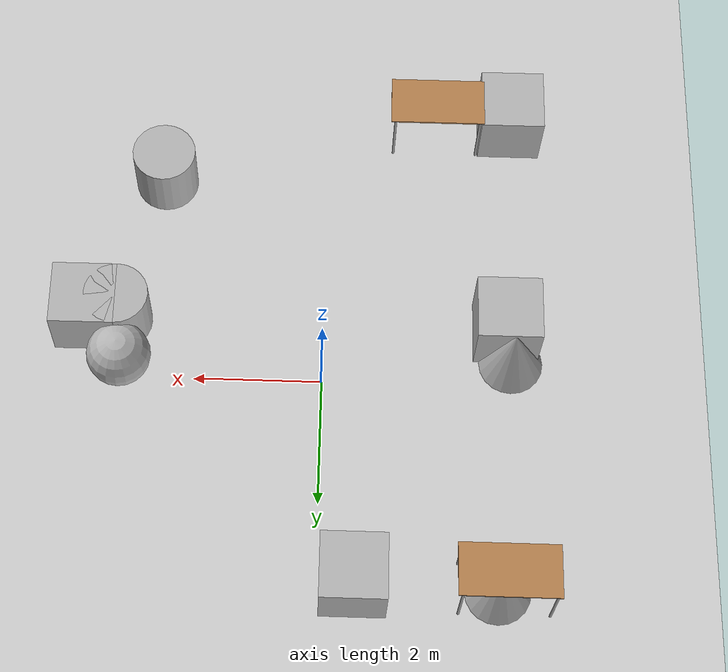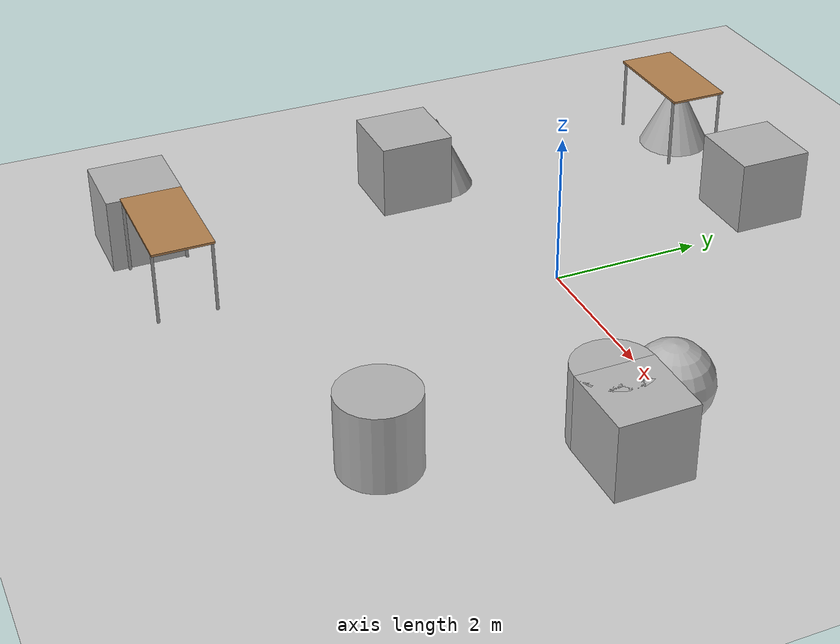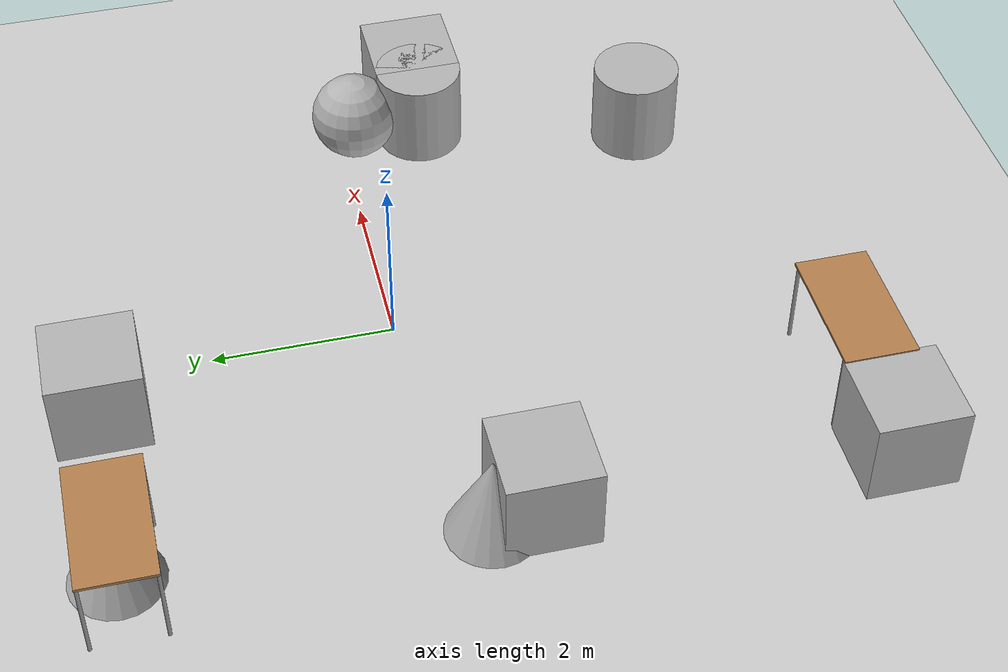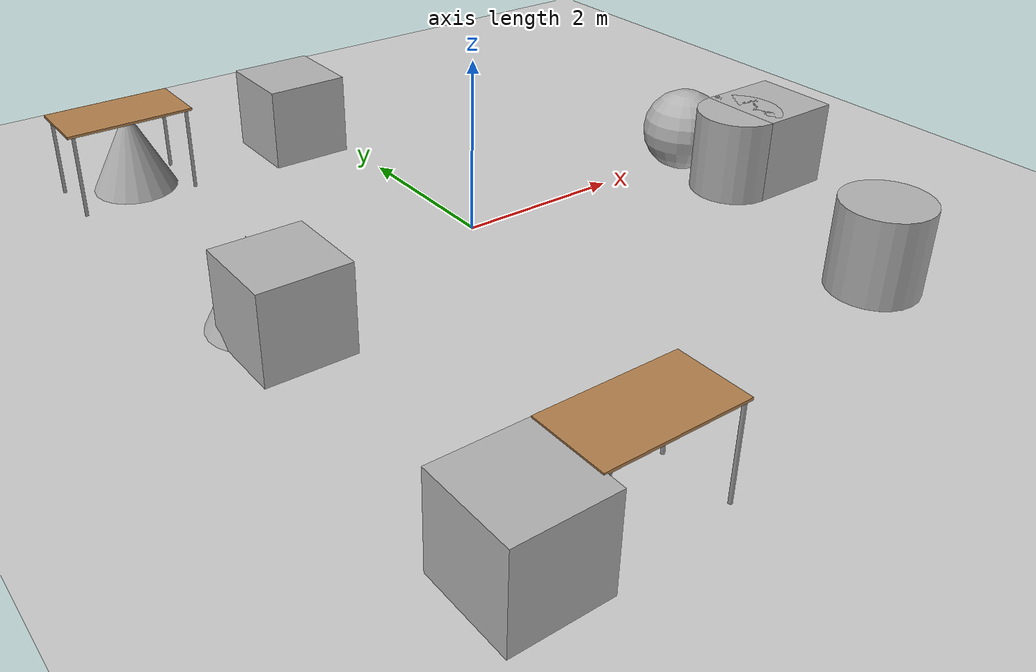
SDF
<sdf version="1.10">
 <world name="rex">
  <physics name="1ms" type="ignored">
   <max_step_size>0.004</max_step_size>
   <real_time_factor>1.0</real_time_factor>
  </physics>
  <plugin filename="gz-sim-physics-system" name="gz::sim::systems::Physics"/>
  <plugin filename="gz-sim-sensors-system" name="gz::sim::systems::Sensors">
   <render_engine>ogre2</render_engine>
  </plugin>
  <plugin filename="gz-sim-imu-system" name="gz::sim::systems::Imu"/>
  <plugin filename="gz-sim-scene-broadcaster-system" name="gz::sim::systems::SceneBroadcaster"/>
  <plugin filename="gz-sim-user-commands-system" name="gz::sim::systems::UserCommands"/>
  <model name="ground_plane">
   <static>true</static>
   <link name="link">
    <collision name="collision">
     <geometry><plane><normal>0 0 1</normal><size>100 100</size></plane></geometry>
     <surface>
      <friction>
       <ode><mu>50</mu></ode>
       <bullet>
        <friction>1</friction>
        <friction2>1</friction2>
        <rolling_friction>0.10000000000000001</rolling_friction>
       </bullet>
      </friction>
     </surface>
    </collision>
    <visual name="visual">
     <geometry><plane><normal>0 0 1</normal><size>100 100</size></plane></geometry>
     <material>
      <ambient>0.800000012 0.800000012 0.800000012 1</ambient>
      <diffuse>0.800000012 0.800000012 0.800000012 1</diffuse>
      <specular>0.800000012 0.800000012 0.800000012 1</specular>
     </material>
    </visual>
    <inertial>
     <mass>1</mass>
     <inertia><ixx>1</ixx><ixy>0</ixy><ixz>0</ixz><iyy>1</iyy><iyz>0</iyz><izz>1</izz></inertia>
    </inertial>
   </link>
  </model>
  <model name="box">
   <pose>-2.8729278835357168 -0.93325829082964118 0.50129350793926331 3.1974178725458216e-05 0.00060684091279483612 -0.00068050382606859834</pose>
   <link name="box_link">
    <inertial>
     <inertia><ixx>0.16666</ixx><ixy>0</ixy><ixz>0</ixz><iyy>0.16666</iyy><iyz>0</iyz><izz>0.16666</izz></inertia>
     <mass>1</mass>
    </inertial>
    <collision name="box_collision"><geometry><box><size>1 1 1</size></box></geometry></collision>
    <visual name="box_visual">
     <geometry><box><size>1 1 1</size></box></geometry>
     <material>
      <ambient>0.300000012 0.300000012 0.300000012 1</ambient>
      <diffuse>0.699999988 0.699999988 0.699999988 1</diffuse>
      <specular>1 1 1 1</specular>
     </material>
    </visual>
   </link>
   <static>false</static>
  </model>
  <model name="box_0">
   <pose>-0.5493398367368949 3.24140669477049 0.50002826555587798 5.68119590793464e-05 -2.7509978451908449e-12 -1.5797895858781808e-10</pose>
   <link name="box_link">
    <inertial>
     <inertia><ixx>0.16666</ixx><ixy>0</ixy><ixz>0</ixz><iyy>0.16666</iyy><iyz>0</iyz><izz>0.16666</izz></inertia>
     <mass>1</mass>
    </inertial>
    <collision name="box_collision"><geometry><box><size>1 1 1</size></box></geometry></collision>
    <visual name="box_visual">
     <geometry><box><size>1 1 1</size></box></geometry>
     <material>
      <ambient>0.300000012 0.300000012 0.300000012 1</ambient>
      <diffuse>0.699999988 0.699999988 0.699999988 1</diffuse>
      <specular>1 1 1 1</specular>
     </material>
    </visual>
   </link>
   <static>false</static>
  </model>
  <model name="box_1">
   <pose>3.716017083610089 -0.97383761937221291 0.49999995592098279 4.5497107666759081e-07 5.0876413483584663e-07 0.0031562724269690971</pose>
   <link name="box_link">
    <inertial>
     <inertia><ixx>0.16666</ixx><ixy>0</ixy><ixz>0</ixz><iyy>0.16666</iyy><iyz>0</iyz><izz>0.16666</izz></inertia>
     <mass>1</mass>
    </inertial>
    <collision name="box_collision"><geometry><box><size>1 1 1</size></box></geometry></collision>
    <visual name="box_visual">
     <geometry><box><size>1 1 1</size></box></geometry>
     <material>
      <ambient>0.300000012 0.300000012 0.300000012 1</ambient>
      <diffuse>0.699999988 0.699999988 0.699999988 1</diffuse>
      <specular>1 1 1 1</specular>
     </material>
    </visual>
   </link>
   <static>false</static>
  </model>
  <model name="sphere">
   <pose>3.1437386192507231 -0.17376902530383745 0.50221191343687677 -0.0092218579730003365 7.6076533510392882e-05 0.001280583944735531</pose>
   <link name="sphere_link">
    <inertial>
     <inertia>
      <ixx>0.10000000000000001</ixx>
      <ixy>0</ixy>
      <ixz>0</ixz>
      <iyy>0.10000000000000001</iyy>
      <iyz>0</iyz>
      <izz>0.10000000000000001</izz>
     </inertia>
     <mass>1</mass>
    </inertial>
    <collision name="sphere_collision"><geometry><sphere><radius>0.5</radius></sphere></geometry></collision>
    <visual name="sphere_visual">
     <geometry><sphere><radius>0.5</radius></sphere></geometry>
     <material>
      <ambient>0.300000012 0.300000012 0.300000012 1</ambient>
      <diffuse>0.699999988 0.699999988 0.699999988 1</diffuse>
      <specular>1 1 1 1</specular>
     </material>
    </visual>
   </link>
   <static>false</static>
  </model>
  <model name="cylinder">
   <pose>3.2060321175079971 -0.97569513094901938 0.50000022724102866 3.9299983031383032e-07 -5.4770222943231937e-07 -0.0054621809125085545</pose>
   <link name="cylinder_link">
    <inertial>
     <inertia>
      <ixx>0.14580000000000001</ixx>
      <ixy>0</ixy>
      <ixz>0</ixz>
      <iyy>0.14580000000000001</iyy>
      <iyz>0</iyz>
      <izz>0.125</izz>
     </inertia>
     <mass>1</mass>
    </inertial>
    <collision name="cylinder_collision">
     <geometry><cylinder><radius>0.5</radius><length>1</length></cylinder></geometry>
    </collision>
    <visual name="cylinder_visual">
     <geometry><cylinder><radius>0.5</radius><length>1</length></cylinder></geometry>
     <material>
      <ambient>0.300000012 0.300000012 0.300000012 1</ambient>
      <diffuse>0.699999988 0.699999988 0.699999988 1</diffuse>
      <specular>1 1 1 1</specular>
     </material>
    </visual>
   </link>
   <static>false</static>
  </model>
  <model name="cylinder_0">
   <pose>2.6184368208240247 -3.497798595727359 0.4999991715375221 5.7770094604106842e-19 6.8818413521910371e-18 -2.1764695673796761e-19</pose>
   <link name="cylinder_link">
    <inertial>
     <inertia>
      <ixx>0.14580000000000001</ixx>
      <ixy>0</ixy>
      <ixz>0</ixz>
      <iyy>0.14580000000000001</iyy>
      <iyz>0</iyz>
      <izz>0.125</izz>
     </inertia>
     <mass>1</mass>
    </inertial>
    <collision name="cylinder_collision">
     <geometry><cylinder><radius>0.5</radius><length>1</length></cylinder></geometry>
    </collision>
    <visual name="cylinder_visual">
     <geometry><cylinder><radius>0.5</radius><length>1</length></cylinder></geometry>
     <material>
      <ambient>0.300000012 0.300000012 0.300000012 1</ambient>
      <diffuse>0.699999988 0.699999988 0.699999988 1</diffuse>
      <specular>1 1 1 1</specular>
     </material>
    </visual>
   </link>
   <static>false</static>
  </model>
  <model name="cone">
   <pose>-2.9570171531902711 -0.40702384283824905 0.49999991885007561 -1.3727020641198694e-07 -5.8058612395440123e-06 -0.0018894410447434589</pose>
   <link name="cone_link">
    <inertial>
     <inertia>
      <ixx>0.074999999999999997</ixx>
      <ixy>0</ixy>
      <ixz>0</ixz>
      <iyy>0.074999999999999997</iyy>
      <iyz>0</iyz>
      <izz>0.074999999999999997</izz>
     </inertia>
     <mass>1</mass>
    </inertial>
    <collision name="cone_collision">
     <geometry><cone><radius>0.5</radius><length>1</length></cone></geometry>
    </collision>
    <visual name="cone_visual">
     <geometry><cone><radius>0.5</radius><length>1</length></cone></geometry>
     <material>
      <ambient>0.300000012 0.300000012 0.300000012 1</ambient>
      <diffuse>0.699999988 0.699999988 0.699999988 1</diffuse>
      <specular>1 1 1 1</specular>
     </material>
    </visual>
   </link>
   <static>false</static>
  </model>
  <model name="Table">
   <static>true</static>
   <link name="link">
    <collision name="surface">
     <pose>0 0 1 0 0 0</pose>
     <geometry><box><size>1.5 0.80000000000000004 0.029999999999999999</size></box></geometry>
     <surface><friction><ode><mu>0.59999999999999998</mu><mu2>0.59999999999999998</mu2></ode></friction></surface>
    </collision>
    <visual name="visual1">
     <pose>0 0 1 0 0 0</pose>
     <geometry><box><size>1.5 0.80000000000000004 0.029999999999999999</size></box></geometry>
     <material>
      <diffuse>1 1 1 1</diffuse>
      <script><uri>file://media/materials/scripts/gazebo.material</uri><name>Gazebo/Wood</name></script>
      <pbr>
       <metal>
        <albedo_map>https://fuel.gazebosim.org/1.0/openrobotics/models/table/4/files/Table_Diffuse.jpg</albedo_map>
       </metal>
      </pbr>
     </material>
    </visual>
    <collision name="front_left_leg">
     <pose>0.68000000000000005 0.38 0.5 0 0 0</pose>
     <geometry><cylinder><radius>0.02</radius><length>1</length></cylinder></geometry>
    </collision>
    <visual name="front_left_leg">
     <pose>0.68000000000000005 0.38 0.5 0 0 0</pose>
     <geometry><cylinder><radius>0.02</radius><length>1</length></cylinder></geometry>
     <material>
      <diffuse>0.5 0.5 0.5 1</diffuse>
      <script><uri>file://media/materials/scripts/gazebo.material</uri><name>Gazebo/Grey</name></script>
     </material>
    </visual>
    <collision name="front_right_leg">
     <pose>0.68000000000000005 -0.38 0.5 0 0 0</pose>
     <geometry><cylinder><radius>0.02</radius><length>1</length></cylinder></geometry>
    </collision>
    <visual name="front_right_leg">
     <pose>0.68000000000000005 -0.38 0.5 0 0 0</pose>
     <geometry><cylinder><radius>0.02</radius><length>1</length></cylinder></geometry>
     <material>
      <diffuse>0.5 0.5 0.5 1</diffuse>
      <script><uri>file://media/materials/scripts/gazebo.material</uri><name>Gazebo/Grey</name></script>
     </material>
    </visual>
    <collision name="back_right_leg">
     <pose>-0.68000000000000005 -0.38 0.5 0 0 0</pose>
     <geometry><cylinder><radius>0.02</radius><length>1</length></cylinder></geometry>
    </collision>
    <visual name="back_right_leg">
     <pose>-0.68000000000000005 -0.38 0.5 0 0 0</pose>
     <geometry><cylinder><radius>0.02</radius><length>1</length></cylinder></geometry>
     <material>
      <diffuse>0.5 0.5 0.5 1</diffuse>
      <script><uri>file://media/materials/scripts/gazebo.material</uri><name>Gazebo/Grey</name></script>
     </material>
    </visual>
    <collision name="back_left_leg">
     <pose>-0.68000000000000005 0.38 0.5 0 0 0</pose>
     <geometry><cylinder><radius>0.02</radius><length>1</length></cylinder></geometry>
    </collision>
    <visual name="back_left_leg">
     <pose>-0.68000000000000005 0.38 0.5 0 0 0</pose>
     <geometry><cylinder><radius>0.02</radius><length>1</length></cylinder></geometry>
     <material>
      <diffuse>0.5 0.5 0.5 1</diffuse>
      <script><uri>file://media/materials/scripts/gazebo.material</uri><name>Gazebo/Grey</name></script>
     </material>
    </visual>
    <inertial>
     <mass>1</mass>
     <inertia><ixx>1</ixx><ixy>0</ixy><ixz>0</ixz><iyy>1</iyy><iyz>0</iyz><izz>1</izz></inertia>
    </inertial>
   </link>
   <pose>-2.7967712804265625 3.2552693541857018 0 0 0 0</pose>
  </model>
  <model name="Table_0">
   <static>true</static>
   <link name="link">
    <collision name="surface">
     <pose>0 0 1 0 0 0</pose>
     <geometry><box><size>1.5 0.80000000000000004 0.029999999999999999</size></box></geometry>
     <surface><friction><ode><mu>0.59999999999999998</mu><mu2>0.59999999999999998</mu2></ode></friction></surface>
    </collision>
    <visual name="visual1">
     <pose>0 0 1 0 0 0</pose>
     <geometry><box><size>1.5 0.80000000000000004 0.029999999999999999</size></box></geometry>
     <material>
      <diffuse>1 1 1 1</diffuse>
      <script><uri>file://media/materials/scripts/gazebo.material</uri><name>Gazebo/Wood</name></script>
      <pbr>
       <metal>
        <albedo_map>https://fuel.gazebosim.org/1.0/openrobotics/models/table/4/files/Table_Diffuse.jpg</albedo_map>
       </metal>
      </pbr>
     </material>
    </visual>
    <collision name="front_left_leg">
     <pose>0.68000000000000005 0.38 0.5 0 0 0</pose>
     <geometry><cylinder><radius>0.02</radius><length>1</length></cylinder></geometry>
    </collision>
    <visual name="front_left_leg">
     <pose>0.68000000000000005 0.38 0.5 0 0 0</pose>
     <geometry><cylinder><radius>0.02</radius><length>1</length></cylinder></geometry>
     <material>
      <diffuse>0.5 0.5 0.5 1</diffuse>
      <script><uri>file://media/materials/scripts/gazebo.material</uri><name>Gazebo/Grey</name></script>
     </material>
    </visual>
    <collision name="front_right_leg">
     <pose>0.68000000000000005 -0.38 0.5 0 0 0</pose>
     <geometry><cylinder><radius>0.02</radius><length>1</length></cylinder></geometry>
    </collision>
    <visual name="front_right_leg">
     <pose>0.68000000000000005 -0.38 0.5 0 0 0</pose>
     <geometry><cylinder><radius>0.02</radius><length>1</length></cylinder></geometry>
     <material>
      <diffuse>0.5 0.5 0.5 1</diffuse>
      <script><uri>file://media/materials/scripts/gazebo.material</uri><name>Gazebo/Grey</name></script>
     </material>
    </visual>
    <collision name="back_right_leg">
     <pose>-0.68000000000000005 -0.38 0.5 0 0 0</pose>
     <geometry><cylinder><radius>0.02</radius><length>1</length></cylinder></geometry>
    </collision>
    <visual name="back_right_leg">
     <pose>-0.68000000000000005 -0.38 0.5 0 0 0</pose>
     <geometry><cylinder><radius>0.02</radius><length>1</length></cylinder></geometry>
     <material>
      <diffuse>0.5 0.5 0.5 1</diffuse>
      <script><uri>file://media/materials/scripts/gazebo.material</uri><name>Gazebo/Grey</name></script>
     </material>
    </visual>
    <collision name="back_left_leg">
     <pose>-0.68000000000000005 0.38 0.5 0 0 0</pose>
     <geometry><cylinder><radius>0.02</radius><length>1</length></cylinder></geometry>
    </collision>
    <visual name="back_left_leg">
     <pose>-0.68000000000000005 0.38 0.5 0 0 0</pose>
     <geometry><cylinder><radius>0.02</radius><length>1</length></cylinder></geometry>
     <material>
      <diffuse>0.5 0.5 0.5 1</diffuse>
      <script><uri>file://media/materials/scripts/gazebo.material</uri><name>Gazebo/Grey</name></script>
     </material>
    </visual>
    <inertial>
     <mass>1</mass>
     <inertia><ixx>1</ixx><ixy>0</ixy><ixz>0</ixz><iyy>1</iyy><iyz>0</iyz><izz>1</izz></inertia>
    </inertial>
   </link>
   <pose>-1.7585856845850714 -4.5779000317367249 0 0 0 0</pose>
  </model>
  <model name="box_2">
   <pose>-2.9737647540504328 -4.667550169803131 0.49950954234690498 -5.2055384550376421e-05 0.00076340251090900851 -9.4780776928202929e-06</pose>
   <link name="box_link">
    <inertial>
     <inertia><ixx>0.16666</ixx><ixy>0</ixy><ixz>0</ixz><iyy>0.16666</iyy><iyz>0</iyz><izz>0.16666</izz></inertia>
     <mass>1</mass>
    </inertial>
    <collision name="box_collision"><geometry><box><size>1 1 1</size></box></geometry></collision>
    <visual name="box_visual">
     <geometry><box><size>1 1 1</size></box></geometry>
     <material>
      <ambient>0.300000012 0.300000012 0.300000012 1</ambient>
      <diffuse>0.699999988 0.699999988 0.699999988 1</diffuse>
      <specular>1 1 1 1</specular>
     </material>
    </visual>
   </link>
   <static>false</static>
  </model>
  <model name="cone_0">
   <pose>-2.7064343562763469 3.2975854636543542 0.49959899089020138 0.00051067534869562645 -0.00051058610300392087 -1.1302686945338583e-05</pose>
   <link name="cone_link">
    <inertial>
     <inertia>
      <ixx>0.074999999999999997</ixx>
      <ixy>0</ixy>
      <ixz>0</ixz>
      <iyy>0.074999999999999997</iyy>
      <iyz>0</iyz>
      <izz>0.074999999999999997</izz>
     </inertia>
     <mass>1</mass>
    </inertial>
    <collision name="cone_collision">
     <geometry><cone><radius>0.5</radius><length>1</length></cone></geometry>
    </collision>
    <visual name="cone_visual">
     <geometry><cone><radius>0.5</radius><length>1</length></cone></geometry>
     <material>
      <ambient>0.300000012 0.300000012 0.300000012 1</ambient>
      <diffuse>0.699999988 0.699999988 0.699999988 1</diffuse>
      <specular>1 1 1 1</specular>
     </material>
    </visual>
   </link>
   <static>false</static>
  </model>
  <light name="sun" type="directional">
   <pose>0 0 10 0 0 0</pose>
   <intensity>1</intensity>
   <direction>-0.5 0.10000000000000001 -0.90000000000000002</direction>
   <diffuse>0.800000012 0.800000012 0.800000012 1</diffuse>
   <specular>0.200000003 0.200000003 0.200000003 1</specular>
   <attenuation>
    <range>1000</range>
    <linear>0.01</linear>
    <constant>0.90000000000000002</constant>
    <quadratic>0.001</quadratic>
   </attenuation>
   <spot><inner_angle>0</inner_angle><outer_angle>0</outer_angle><falloff>0</falloff></spot>
  </light>
 </world>
</sdf>
